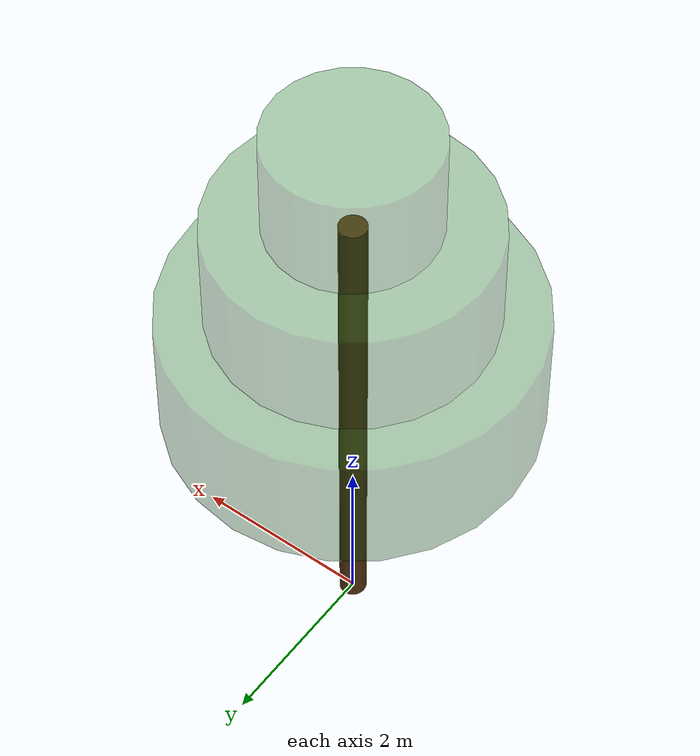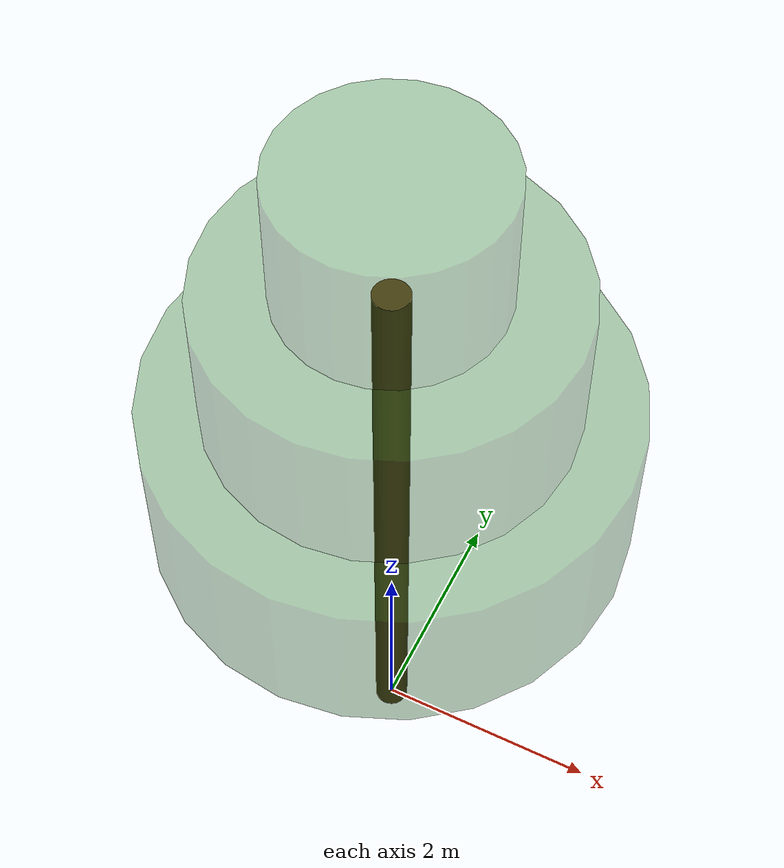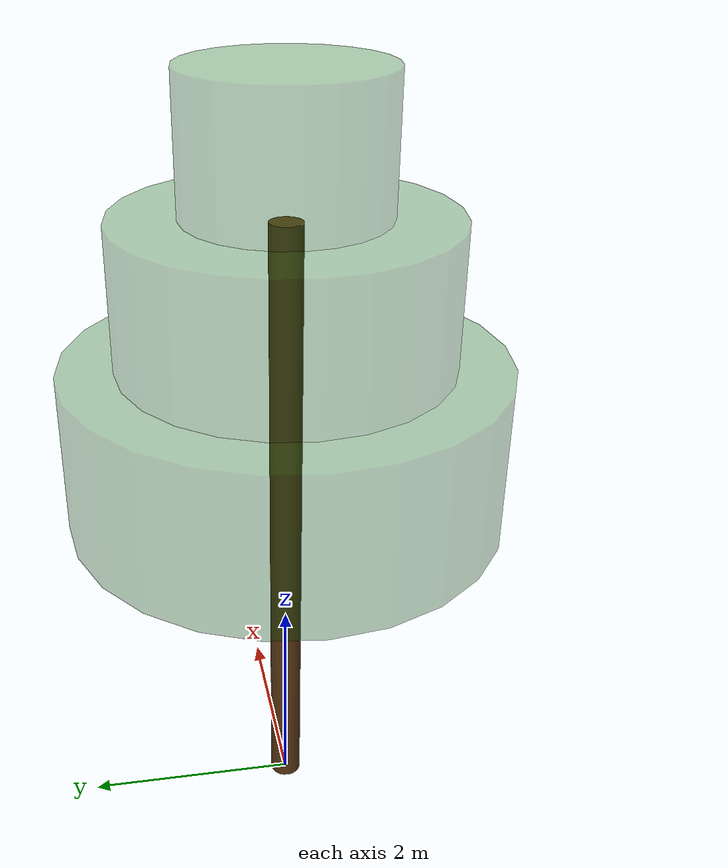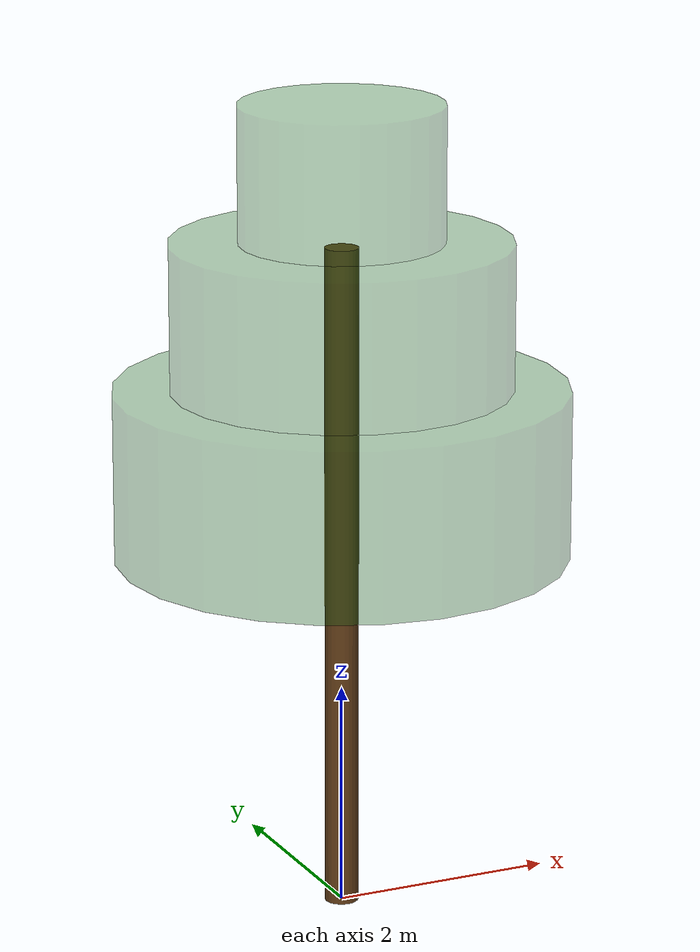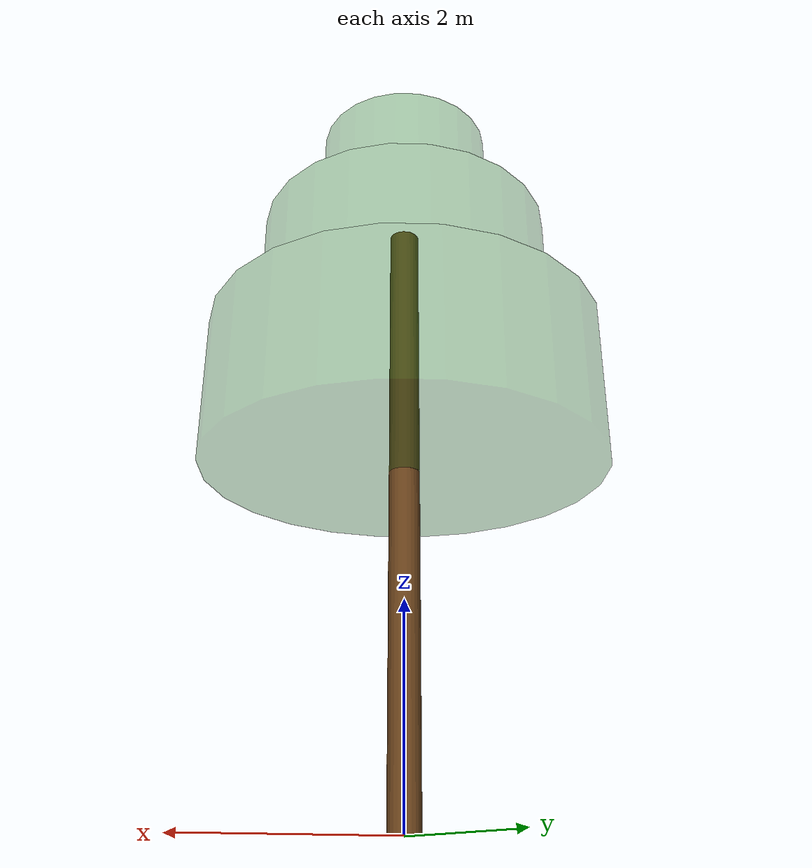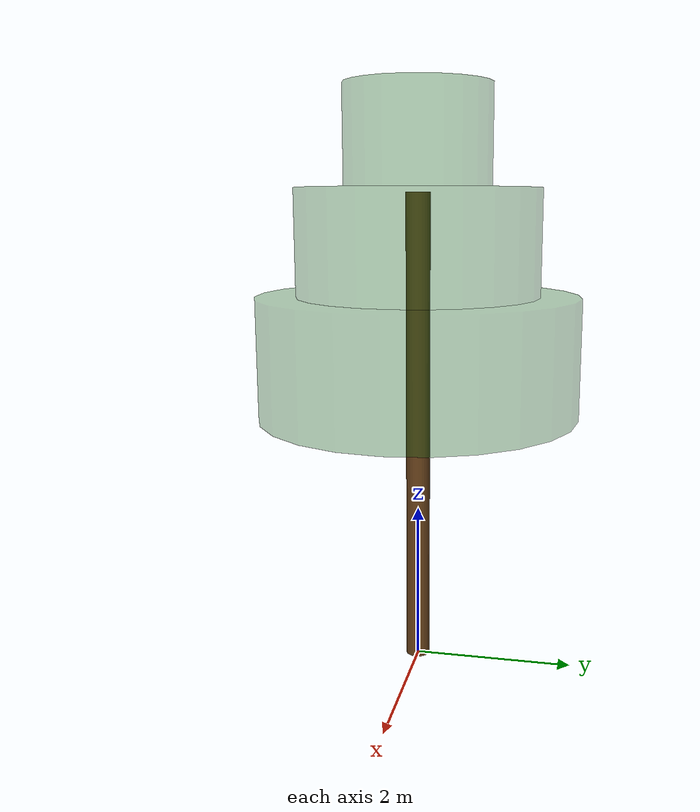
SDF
<?xml version="1.0" ?>
<sdf version="1.6">
  <model name="pine_tree_local">
    <static>true</static>
    <link name="trunk">
      <!-- 松树干（更细更高） -->
      <collision name="trunk_collision">
        <pose>0 0 3.0 0 0 0</pose>
        <geometry>
          <cylinder><radius>0.15</radius><length>6.0</length></cylinder>
        </geometry>
      </collision>
      <visual name="trunk_visual">
        <pose>0 0 3.0 0 0 0</pose>
        <geometry>
          <cylinder><radius>0.15</radius><length>6.0</length></cylinder>
        </geometry>
        <material>
          <ambient>0.3 0.18 0.06 1</ambient>
          <diffuse>0.4 0.25 0.1 1</diffuse>
        </material>
      </visual>
      <!-- 松树冠(锥形, 用圆锥近似) -->
      <collision name="canopy_collision">
        <pose>0 0 5.5 0 0 0</pose>
        <geometry>
          <cylinder><radius>1.8</radius><length>5.0</length></cylinder>
        </geometry>
      </collision>
      <visual name="canopy_lower">
        <pose>0 0 4.0 0 0 0</pose>
        <geometry>
          <cylinder><radius>2.0</radius><length>1.5</length></cylinder>
        </geometry>
        <material>
          <ambient>0.04 0.28 0.03 0.35</ambient>
          <diffuse>0.06 0.38 0.05 0.35</diffuse>
        </material>
        <transparency>0.6</transparency>
      </visual>
      <visual name="canopy_mid">
        <pose>0 0 5.3 0 0 0</pose>
        <geometry>
          <cylinder><radius>1.5</radius><length>1.5</length></cylinder>
        </geometry>
        <material>
          <ambient>0.05 0.3 0.04 0.35</ambient>
          <diffuse>0.07 0.4 0.06 0.35</diffuse>
        </material>
        <transparency>0.6</transparency>
      </visual>
      <visual name="canopy_top">
        <pose>0 0 6.5 0 0 0</pose>
        <geometry>
          <cylinder><radius>0.9</radius><length>1.5</length></cylinder>
        </geometry>
        <material>
          <ambient>0.06 0.32 0.05 0.35</ambient>
          <diffuse>0.08 0.42 0.07 0.35</diffuse>
        </material>
        <transparency>0.6</transparency>
      </visual>
    </link>
  </model>
</sdf>
